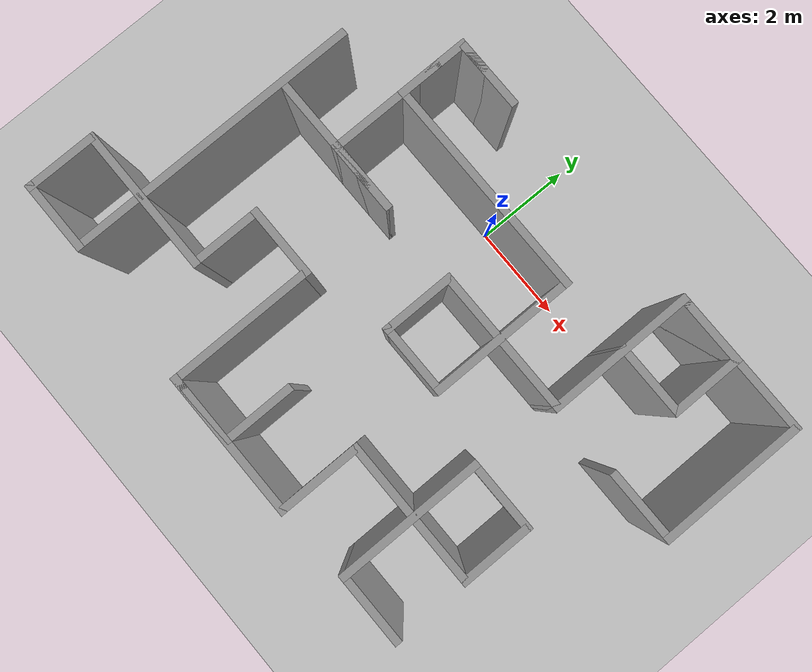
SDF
<sdf version="1.7">
 <world name="default">
  <light name="sun" type="directional">
   <pose>0 0 10 0 -0 0</pose>
   <diffuse>0.8 0.8 0.8 1</diffuse>
   <specular>0.2 0.2 0.2 1</specular>
   <attenuation>
    <range>1000</range>
    <constant>0.9</constant>
    <linear>0.01</linear>
    <quadratic>0.001</quadratic>
   </attenuation>
   <direction>-0.5 0.1 -0.9</direction>
   <spot><inner_angle>0</inner_angle><outer_angle>0</outer_angle><falloff>0</falloff></spot>
  </light>
  <model name="ground_plane">
   <static>1</static>
   <link name="link">
    <collision name="collision">
     <geometry><plane><normal>0 0 1</normal><size>100 100</size></plane></geometry>
     <surface><friction><ode><mu>100</mu><mu2>50</mu2></ode></friction></surface>
    </collision>
    <visual name="visual">
     <cast_shadows>0</cast_shadows>
     <geometry><plane><normal>0 0 1</normal><size>100 100</size></plane></geometry>
     <material>
      <script><uri>file://media/materials/scripts/gazebo.material</uri><name>Gazebo/Grey</name></script>
     </material>
    </visual>
   </link>
  </model>
  <gravity>0 0 -9.8</gravity>
  <magnetic_field>6e-06 2.3e-05 -4.2e-05</magnetic_field>
  <atmosphere type="adiabatic"/>
  <physics type="ode">
   <max_step_size>0.001</max_step_size>
   <real_time_factor>1</real_time_factor>
   <real_time_update_rate>1000</real_time_update_rate>
  </physics>
  <scene><ambient>0.4 0.4 0.4 1</ambient><background>0.7 0.7 0.7 1</background><shadows>1</shadows></scene>
  <audio><device>default</device></audio>
  <spherical_coordinates>
   <surface_model>EARTH_WGS84</surface_model>
   <latitude_deg>0</latitude_deg>
   <longitude_deg>0</longitude_deg>
   <elevation>0</elevation>
   <heading_deg>0</heading_deg>
  </spherical_coordinates>
  <model name="Open_Track_Maze_1.5m_unit_scale">
   <pose>0.306739 -2.35282 0 0 -0 0</pose>
   <link name="Wall_0">
    <collision name="Wall_0_Collision">
     <geometry><box><size>1.5 0.15 2.5</size></box></geometry>
     <pose>0 0 1.25 0 -0 0</pose>
    </collision>
    <visual name="Wall_0_Visual">
     <pose>0 0 1.25 0 -0 0</pose>
     <geometry><box><size>1.5 0.15 2.5</size></box></geometry>
     <material>
      <script><uri>file://media/materials/scripts/gazebo.material</uri><name>Gazebo/Grey</name></script>
      <ambient>1 1 1 1</ambient>
     </material>
     <meta><layer>0</layer></meta>
    </visual>
    <pose>3.45 -3.65 0 0 -0 3.14159</pose>
   </link>
   <link name="Wall_1">
    <collision name="Wall_1_Collision">
     <geometry><box><size>3 0.15 2.5</size></box></geometry>
     <pose>0 0 1.25 0 -0 0</pose>
    </collision>
    <visual name="Wall_1_Visual">
     <pose>0 0 1.25 0 -0 0</pose>
     <geometry><box><size>3 0.15 2.5</size></box></geometry>
     <material>
      <script><uri>file://media/materials/scripts/gazebo.material</uri><name>Gazebo/Grey</name></script>
      <ambient>1 1 1 1</ambient>
     </material>
     <meta><layer>0</layer></meta>
    </visual>
    <pose>2.775 -2.225 0 0 -0 1.5708</pose>
   </link>
   <link name="Wall_11">
    <collision name="Wall_11_Collision">
     <geometry><box><size>3 0.15 2.5</size></box></geometry>
     <pose>0 0 1.25 0 -0 0</pose>
    </collision>
    <visual name="Wall_11_Visual">
     <pose>0 0 1.25 0 -0 0</pose>
     <geometry><box><size>3 0.15 2.5</size></box></geometry>
     <material>
      <script><uri>file://media/materials/scripts/gazebo.material</uri><name>Gazebo/Grey</name></script>
      <ambient>1 1 1 1</ambient>
     </material>
     <meta><layer>0</layer></meta>
    </visual>
    <pose>-4.35 -2.25 0 0 -0 3.14159</pose>
   </link>
   <link name="Wall_12">
    <collision name="Wall_12_Collision">
     <geometry><box><size>1.5 0.15 2.5</size></box></geometry>
     <pose>0 0 1.25 0 -0 0</pose>
    </collision>
    <visual name="Wall_12_Visual">
     <pose>0 0 1.25 0 -0 0</pose>
     <geometry><box><size>1.5 0.15 2.5</size></box></geometry>
     <material>
      <script><uri>file://media/materials/scripts/gazebo.material</uri><name>Gazebo/Grey</name></script>
      <ambient>1 1 1 1</ambient>
     </material>
     <meta><layer>0</layer></meta>
    </visual>
    <pose>-5.775 -2.925 0 0 -0 -1.5708</pose>
   </link>
   <link name="Wall_13">
    <collision name="Wall_13_Collision">
     <geometry><box><size>1.5 0.15 2.5</size></box></geometry>
     <pose>0 0 1.25 0 -0 0</pose>
    </collision>
    <visual name="Wall_13_Visual">
     <pose>0 0 1.25 0 -0 0</pose>
     <geometry><box><size>1.5 0.15 2.5</size></box></geometry>
     <material>
      <script><uri>file://media/materials/scripts/gazebo.material</uri><name>Gazebo/Grey</name></script>
      <ambient>1 1 1 1</ambient>
     </material>
     <meta><layer>0</layer></meta>
    </visual>
    <pose>-5.1 -3.6 0 0 -0 0</pose>
   </link>
   <link name="Wall_15">
    <collision name="Wall_15_Collision">
     <geometry><box><size>6 0.15 2.5</size></box></geometry>
     <pose>0 0 1.25 0 -0 0</pose>
    </collision>
    <visual name="Wall_15_Visual">
     <pose>0 0 1.25 0 -0 0</pose>
     <geometry><box><size>6 0.15 2.5</size></box></geometry>
     <material>
      <script><uri>file://media/materials/scripts/gazebo.material</uri><name>Gazebo/Grey</name></script>
      <ambient>1 1 1 1</ambient>
     </material>
     <meta><layer>0</layer></meta>
    </visual>
    <pose>-4.425 -0.675 0 0 -0 1.5708</pose>
   </link>
   <link name="Wall_16">
    <collision name="Wall_16_Collision">
     <geometry><box><size>1.5 0.15 2.5</size></box></geometry>
     <pose>0 0 1.25 0 -0 0</pose>
    </collision>
    <visual name="Wall_16_Visual">
     <pose>0 0 1.25 0 -0 0</pose>
     <geometry><box><size>1.5 0.15 2.5</size></box></geometry>
     <material>
      <script><uri>file://media/materials/scripts/gazebo.material</uri><name>Gazebo/Grey</name></script>
      <ambient>1 1 1 1</ambient>
     </material>
     <meta><layer>0</layer></meta>
    </visual>
    <pose>-4.425 1.575 0 0 -0 -1.5708</pose>
   </link>
   <link name="Wall_17">
    <collision name="Wall_17_Collision">
     <geometry><box><size>3 0.15 2.5</size></box></geometry>
     <pose>0 0 1.25 0 -0 0</pose>
    </collision>
    <visual name="Wall_17_Visual">
     <pose>0 0 1.25 0 -0 0</pose>
     <geometry><box><size>3 0.15 2.5</size></box></geometry>
     <material>
      <script><uri>file://media/materials/scripts/gazebo.material</uri><name>Gazebo/Grey</name></script>
      <ambient>1 1 1 1</ambient>
     </material>
     <meta><layer>0</layer></meta>
    </visual>
    <pose>-3 0.9 0 0 -0 0</pose>
   </link>
   <link name="Wall_18">
    <collision name="Wall_18_Collision">
     <geometry><box><size>1.5 0.15 2.5</size></box></geometry>
     <pose>0 0 1.25 0 -0 0</pose>
    </collision>
    <visual name="Wall_18_Visual">
     <pose>0 0 1.25 0 -0 0</pose>
     <geometry><box><size>1.5 0.15 2.5</size></box></geometry>
     <material>
      <script><uri>file://media/materials/scripts/gazebo.material</uri><name>Gazebo/Grey</name></script>
      <ambient>1 1 1 1</ambient>
     </material>
     <meta><layer>0</layer></meta>
    </visual>
    <pose>-2.25 0.9 0 0 -0 3.14159</pose>
   </link>
   <link name="Wall_19">
    <collision name="Wall_19_Collision">
     <geometry><box><size>3 0.15 2.5</size></box></geometry>
     <pose>0 0 1.25 0 -0 0</pose>
    </collision>
    <visual name="Wall_19_Visual">
     <pose>0 0 1.25 0 -0 0</pose>
     <geometry><box><size>3 0.15 2.5</size></box></geometry>
     <material>
      <script><uri>file://media/materials/scripts/gazebo.material</uri><name>Gazebo/Grey</name></script>
      <ambient>1 1 1 1</ambient>
     </material>
     <meta><layer>0</layer></meta>
    </visual>
    <pose>-2.925 2.325 0 0 -0 1.5708</pose>
   </link>
   <link name="Wall_2">
    <collision name="Wall_2_Collision">
     <geometry><box><size>1.5 0.15 2.5</size></box></geometry>
     <pose>0 0 1.25 0 -0 0</pose>
    </collision>
    <visual name="Wall_2_Visual">
     <pose>0 0 1.25 0 -0 0</pose>
     <geometry><box><size>1.5 0.15 2.5</size></box></geometry>
     <material>
      <script><uri>file://media/materials/scripts/gazebo.material</uri><name>Gazebo/Grey</name></script>
      <ambient>1 1 1 1</ambient>
     </material>
     <meta><layer>0</layer></meta>
    </visual>
    <pose>3.45 -0.8 0 0 -0 0</pose>
   </link>
   <link name="Wall_20">
    <collision name="Wall_20_Collision">
     <geometry><box><size>1.5 0.15 2.5</size></box></geometry>
     <pose>0 0 1.25 0 -0 0</pose>
    </collision>
    <visual name="Wall_20_Visual">
     <pose>0 0 1.25 0 -0 0</pose>
     <geometry><box><size>1.5 0.15 2.5</size></box></geometry>
     <material>
      <script><uri>file://media/materials/scripts/gazebo.material</uri><name>Gazebo/Grey</name></script>
      <ambient>1 1 1 1</ambient>
     </material>
     <meta><layer>0</layer></meta>
    </visual>
    <pose>-2.25 3.75 0 0 -0 0</pose>
   </link>
   <link name="Wall_21">
    <collision name="Wall_21_Collision">
     <geometry><box><size>1.5 0.15 2.5</size></box></geometry>
     <pose>0 0 1.25 0 -0 0</pose>
    </collision>
    <visual name="Wall_21_Visual">
     <pose>0 0 1.25 0 -0 0</pose>
     <geometry><box><size>1.5 0.15 2.5</size></box></geometry>
     <material>
      <script><uri>file://media/materials/scripts/gazebo.material</uri><name>Gazebo/Grey</name></script>
      <ambient>1 1 1 1</ambient>
     </material>
     <meta><layer>0</layer></meta>
    </visual>
    <pose>-2.25 3.75 0 0 -0 3.14159</pose>
   </link>
   <link name="Wall_22">
    <collision name="Wall_22_Collision">
     <geometry><box><size>1.5 0.15 2.5</size></box></geometry>
     <pose>0 0 1.25 0 -0 0</pose>
    </collision>
    <visual name="Wall_22_Visual">
     <pose>0 0 1.25 0 -0 0</pose>
     <geometry><box><size>1.5 0.15 2.5</size></box></geometry>
     <material>
      <script><uri>file://media/materials/scripts/gazebo.material</uri><name>Gazebo/Grey</name></script>
      <ambient>1 1 1 1</ambient>
     </material>
     <meta><layer>0</layer></meta>
    </visual>
    <pose>-2.925 3.075 0 0 -0 -1.5708</pose>
   </link>
   <link name="Wall_23">
    <collision name="Wall_23_Collision">
     <geometry><box><size>4.5 0.15 2.5</size></box></geometry>
     <pose>0 0 1.25 0 -0 0</pose>
    </collision>
    <visual name="Wall_23_Visual">
     <pose>0 0 1.25 0 -0 0</pose>
     <geometry><box><size>4.5 0.15 2.5</size></box></geometry>
     <material>
      <script><uri>file://media/materials/scripts/gazebo.material</uri><name>Gazebo/Grey</name></script>
      <ambient>1 1 1 1</ambient>
     </material>
     <meta><layer>0</layer></meta>
    </visual>
    <pose>-0.75 2.4 0 0 -0 0</pose>
   </link>
   <link name="Wall_24">
    <collision name="Wall_24_Collision">
     <geometry><box><size>3 0.15 2.5</size></box></geometry>
     <pose>0 0 1.25 0 -0 0</pose>
    </collision>
    <visual name="Wall_24_Visual">
     <pose>0 0 1.25 0 -0 0</pose>
     <geometry><box><size>3 0.15 2.5</size></box></geometry>
     <material>
      <script><uri>file://media/materials/scripts/gazebo.material</uri><name>Gazebo/Grey</name></script>
      <ambient>1 1 1 1</ambient>
     </material>
     <meta><layer>0</layer></meta>
    </visual>
    <pose>1.425 0.975 0 0 -0 -1.5708</pose>
   </link>
   <link name="Wall_25">
    <collision name="Wall_25_Collision">
     <geometry><box><size>1.5 0.15 2.5</size></box></geometry>
     <pose>0 0 1.25 0 -0 0</pose>
    </collision>
    <visual name="Wall_25_Visual">
     <pose>0 0 1.25 0 -0 0</pose>
     <geometry><box><size>1.5 0.15 2.5</size></box></geometry>
     <material>
      <script><uri>file://media/materials/scripts/gazebo.material</uri><name>Gazebo/Grey</name></script>
      <ambient>1 1 1 1</ambient>
     </material>
     <meta><layer>0</layer></meta>
    </visual>
    <pose>0.75 -0.45 0 0 -0 3.14159</pose>
   </link>
   <link name="Wall_26">
    <collision name="Wall_26_Collision">
     <geometry><box><size>1.5 0.15 2.5</size></box></geometry>
     <pose>0 0 1.25 0 -0 0</pose>
    </collision>
    <visual name="Wall_26_Visual">
     <pose>0 0 1.25 0 -0 0</pose>
     <geometry><box><size>1.5 0.15 2.5</size></box></geometry>
     <material>
      <script><uri>file://media/materials/scripts/gazebo.material</uri><name>Gazebo/Grey</name></script>
      <ambient>1 1 1 1</ambient>
     </material>
     <meta><layer>0</layer></meta>
    </visual>
    <pose>0.075 0.225 0 0 -0 1.5708</pose>
   </link>
   <link name="Wall_27">
    <collision name="Wall_27_Collision">
     <geometry><box><size>3 0.15 2.5</size></box></geometry>
     <pose>0 0 1.25 0 -0 0</pose>
    </collision>
    <visual name="Wall_27_Visual">
     <pose>0 0 1.25 0 -0 0</pose>
     <geometry><box><size>3 0.15 2.5</size></box></geometry>
     <material>
      <script><uri>file://media/materials/scripts/gazebo.material</uri><name>Gazebo/Grey</name></script>
      <ambient>1 1 1 1</ambient>
     </material>
     <meta><layer>0</layer></meta>
    </visual>
    <pose>1.5 0.9 0 0 -0 0</pose>
   </link>
   <link name="Wall_28">
    <collision name="Wall_28_Collision">
     <geometry><box><size>3 0.15 2.5</size></box></geometry>
     <pose>0 0 1.25 0 -0 0</pose>
    </collision>
    <visual name="Wall_28_Visual">
     <pose>0 0 1.25 0 -0 0</pose>
     <geometry><box><size>3 0.15 2.5</size></box></geometry>
     <material>
      <script><uri>file://media/materials/scripts/gazebo.material</uri><name>Gazebo/Grey</name></script>
      <ambient>1 1 1 1</ambient>
     </material>
     <meta><layer>0</layer></meta>
    </visual>
    <pose>2.925 2.325 0 0 -0 1.5708</pose>
   </link>
   <link name="Wall_29">
    <collision name="Wall_29_Collision">
     <geometry><box><size>3 0.15 2.5</size></box></geometry>
     <pose>0 0 1.25 0 -0 0</pose>
    </collision>
    <visual name="Wall_29_Visual">
     <pose>0 0 1.25 0 -0 0</pose>
     <geometry><box><size>3 0.15 2.5</size></box></geometry>
     <material>
      <script><uri>file://media/materials/scripts/gazebo.material</uri><name>Gazebo/Grey</name></script>
      <ambient>1 1 1 1</ambient>
     </material>
     <meta><layer>0</layer></meta>
    </visual>
    <pose>4.35 3.75 0 0 -0 0</pose>
   </link>
   <link name="Wall_3">
    <collision name="Wall_3_Collision">
     <geometry><box><size>1.5 0.15 2.5</size></box></geometry>
     <pose>0 0 1.25 0 -0 0</pose>
    </collision>
    <visual name="Wall_3_Visual">
     <pose>0 0 1.25 0 -0 0</pose>
     <geometry><box><size>1.5 0.15 2.5</size></box></geometry>
     <material>
      <script><uri>file://media/materials/scripts/gazebo.material</uri><name>Gazebo/Grey</name></script>
      <ambient>1 1 1 1</ambient>
     </material>
     <meta><layer>0</layer></meta>
    </visual>
    <pose>4.125 -1.475 0 0 -0 -1.5708</pose>
   </link>
   <link name="Wall_30">
    <collision name="Wall_30_Collision">
     <geometry><box><size>3 0.15 2.5</size></box></geometry>
     <pose>0 0 1.25 0 -0 0</pose>
    </collision>
    <visual name="Wall_30_Visual">
     <pose>0 0 1.25 0 -0 0</pose>
     <geometry><box><size>3 0.15 2.5</size></box></geometry>
     <material>
      <script><uri>file://media/materials/scripts/gazebo.material</uri><name>Gazebo/Grey</name></script>
      <ambient>1 1 1 1</ambient>
     </material>
     <meta><layer>0</layer></meta>
    </visual>
    <pose>5.775 2.325 0 0 -0 -1.5708</pose>
   </link>
   <link name="Wall_31">
    <collision name="Wall_31_Collision">
     <geometry><box><size>1.5 0.15 2.5</size></box></geometry>
     <pose>0 0 1.25 0 -0 0</pose>
    </collision>
    <visual name="Wall_31_Visual">
     <pose>0 0 1.25 0 -0 0</pose>
     <geometry><box><size>1.5 0.15 2.5</size></box></geometry>
     <material>
      <script><uri>file://media/materials/scripts/gazebo.material</uri><name>Gazebo/Grey</name></script>
      <ambient>1 1 1 1</ambient>
     </material>
     <meta><layer>0</layer></meta>
    </visual>
    <pose>5.1 0.9 0 0 -0 3.14159</pose>
   </link>
   <link name="Wall_33">
    <collision name="Wall_33_Collision">
     <geometry><box><size>1.5 0.15 2.5</size></box></geometry>
     <pose>0 0 1.25 0 -0 0</pose>
    </collision>
    <visual name="Wall_33_Visual">
     <pose>0 0 1.25 0 -0 0</pose>
     <geometry><box><size>1.5 0.15 2.5</size></box></geometry>
     <material>
      <script><uri>file://media/materials/scripts/gazebo.material</uri><name>Gazebo/Grey</name></script>
      <ambient>1 1 1 1</ambient>
     </material>
     <meta><layer>0</layer></meta>
    </visual>
    <pose>3.6 3.75 0 0 -0 0</pose>
   </link>
   <link name="Wall_34">
    <collision name="Wall_34_Collision">
     <geometry><box><size>1.5 0.15 2.5</size></box></geometry>
     <pose>0 0 1.25 0 -0 0</pose>
    </collision>
    <visual name="Wall_34_Visual">
     <pose>0 0 1.25 0 -0 0</pose>
     <geometry><box><size>1.5 0.15 2.5</size></box></geometry>
     <material>
      <script><uri>file://media/materials/scripts/gazebo.material</uri><name>Gazebo/Grey</name></script>
      <ambient>1 1 1 1</ambient>
     </material>
     <meta><layer>0</layer></meta>
    </visual>
    <pose>4.275 3.075 0 0 -0 -1.5708</pose>
   </link>
   <link name="Wall_35">
    <collision name="Wall_35_Collision">
     <geometry><box><size>1.5 0.15 2.5</size></box></geometry>
     <pose>0 0 1.25 0 -0 0</pose>
    </collision>
    <visual name="Wall_35_Visual">
     <pose>0 0 1.25 0 -0 0</pose>
     <geometry><box><size>1.5 0.15 2.5</size></box></geometry>
     <material>
      <script><uri>file://media/materials/scripts/gazebo.material</uri><name>Gazebo/Grey</name></script>
      <ambient>1 1 1 1</ambient>
     </material>
     <meta><layer>0</layer></meta>
    </visual>
    <pose>3.6 2.4 0 0 -0 3.14159</pose>
   </link>
   <link name="Wall_37">
    <collision name="Wall_37_Collision">
     <geometry><box><size>1.5 0.15 2.5</size></box></geometry>
     <pose>0 0 1.25 0 -0 0</pose>
    </collision>
    <visual name="Wall_37_Visual">
     <pose>0 0 1.25 0 -0 0</pose>
     <geometry><box><size>1.5 0.15 2.5</size></box></geometry>
     <material>
      <script><uri>file://media/materials/scripts/gazebo.material</uri><name>Gazebo/Grey</name></script>
      <ambient>1 1 1 1</ambient>
     </material>
     <meta><layer>0</layer></meta>
    </visual>
    <pose>-0.9 -3.75 0 0 -0 0</pose>
   </link>
   <link name="Wall_38">
    <collision name="Wall_38_Collision">
     <geometry><box><size>1.5 0.15 2.5</size></box></geometry>
     <pose>0 0 1.25 0 -0 0</pose>
    </collision>
    <visual name="Wall_38_Visual">
     <pose>0 0 1.25 0 -0 0</pose>
     <geometry><box><size>1.5 0.15 2.5</size></box></geometry>
     <material>
      <script><uri>file://media/materials/scripts/gazebo.material</uri><name>Gazebo/Grey</name></script>
      <ambient>1 1 1 1</ambient>
     </material>
     <meta><layer>0</layer></meta>
    </visual>
    <pose>-0.225 -3.075 0 0 -0 1.5708</pose>
   </link>
   <link name="Wall_4">
    <collision name="Wall_4_Collision">
     <geometry><box><size>3 0.15 2.5</size></box></geometry>
     <pose>0 0 1.25 0 -0 0</pose>
    </collision>
    <visual name="Wall_4_Visual">
     <pose>0 0 1.25 0 -0 0</pose>
     <geometry><box><size>3 0.15 2.5</size></box></geometry>
     <material>
      <script><uri>file://media/materials/scripts/gazebo.material</uri><name>Gazebo/Grey</name></script>
      <ambient>1 1 1 1</ambient>
     </material>
     <meta><layer>0</layer></meta>
    </visual>
    <pose>2.7 -2.15 0 0 -0 3.14159</pose>
   </link>
   <link name="Wall_5">
    <collision name="Wall_5_Collision">
     <geometry><box><size>1.75 0.15 2.5</size></box></geometry>
     <pose>0 0 1.25 0 -0 0</pose>
    </collision>
    <visual name="Wall_5_Visual">
     <pose>0 0 1.25 0 -0 0</pose>
     <geometry><box><size>1.75 0.15 2.5</size></box></geometry>
     <material>
      <script><uri>file://media/materials/scripts/gazebo.material</uri><name>Gazebo/Grey</name></script>
      <ambient>1 1 1 1</ambient>
     </material>
     <meta><layer>0</layer></meta>
    </visual>
    <pose>1.275 -2.95 0 0 -0 -1.5708</pose>
   </link>
   <link name="Wall_6">
    <collision name="Wall_6_Collision">
     <geometry><box><size>3 0.15 2.5</size></box></geometry>
     <pose>0 0 1.25 0 -0 0</pose>
    </collision>
    <visual name="Wall_6_Visual">
     <pose>0 0 1.25 0 -0 0</pose>
     <geometry><box><size>3 0.15 2.5</size></box></geometry>
     <material>
      <script><uri>file://media/materials/scripts/gazebo.material</uri><name>Gazebo/Grey</name></script>
      <ambient>1 1 1 1</ambient>
     </material>
     <meta><layer>0</layer></meta>
    </visual>
    <pose>-0.15 -3.75 0 0 -0 3.14159</pose>
   </link>
   <link name="Wall_7">
    <collision name="Wall_7_Collision">
     <geometry><box><size>3 0.15 2.5</size></box></geometry>
     <pose>0 0 1.25 0 -0 0</pose>
    </collision>
    <visual name="Wall_7_Visual">
     <pose>0 0 1.25 0 -0 0</pose>
     <geometry><box><size>3 0.15 2.5</size></box></geometry>
     <material>
      <script><uri>file://media/materials/scripts/gazebo.material</uri><name>Gazebo/Grey</name></script>
      <ambient>1 1 1 1</ambient>
     </material>
     <meta><layer>0</layer></meta>
    </visual>
    <pose>-1.575 -2.325 0 0 -0 1.5708</pose>
   </link>
   <link name="Wall_8">
    <collision name="Wall_8_Collision">
     <geometry><box><size>1.5 0.15 2.5</size></box></geometry>
     <pose>0 0 1.25 0 -0 0</pose>
    </collision>
    <visual name="Wall_8_Visual">
     <pose>0 0 1.25 0 -0 0</pose>
     <geometry><box><size>1.5 0.15 2.5</size></box></geometry>
     <material>
      <script><uri>file://media/materials/scripts/gazebo.material</uri><name>Gazebo/Grey</name></script>
      <ambient>1 1 1 1</ambient>
     </material>
     <meta><layer>0</layer></meta>
    </visual>
    <pose>-2.25 -0.9 0 0 -0 3.14159</pose>
   </link>
   <link name="Wall_9">
    <collision name="Wall_9_Collision">
     <geometry><box><size>1.5 0.15 2.5</size></box></geometry>
     <pose>0 0 1.25 0 -0 0</pose>
    </collision>
    <visual name="Wall_9_Visual">
     <pose>0 0 1.25 0 -0 0</pose>
     <geometry><box><size>1.5 0.15 2.5</size></box></geometry>
     <material>
      <script><uri>file://media/materials/scripts/gazebo.material</uri><name>Gazebo/Grey</name></script>
      <ambient>1 1 1 1</ambient>
     </material>
     <meta><layer>0</layer></meta>
    </visual>
    <pose>-2.925 -1.575 0 0 -0 -1.5708</pose>
   </link>
   <static>1</static>
  </model>
 </world>
</sdf>
